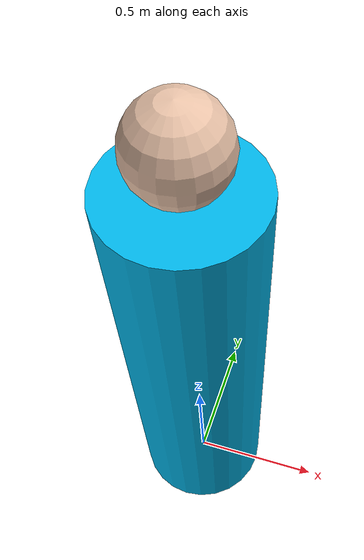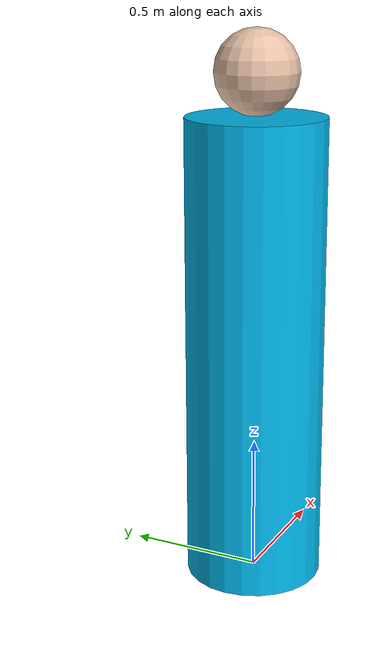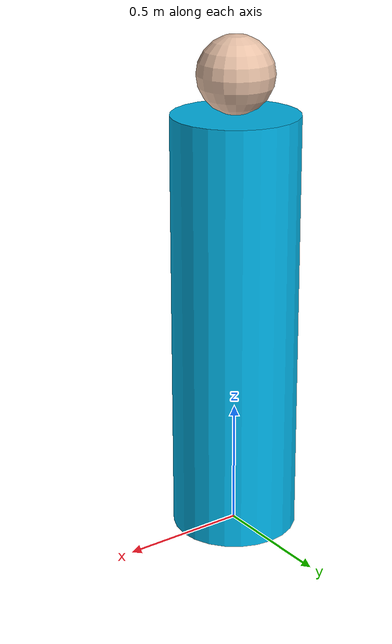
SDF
<?xml version="1.0" ?>
<sdf version="1.6">
  <model name="static_human">
    <static>true</static>
    <link name="link">
      <!-- Torso / Body -->
      <collision name="body_collision">
        <pose>0 0 0.85 0 0 0</pose>
        <geometry>
          <cylinder>
            <radius>0.25</radius>
            <length>1.7</length>
          </cylinder>
        </geometry>
      </collision>
      <visual name="body_visual">
        <pose>0 0 0.85 0 0 0</pose>
        <geometry>
          <cylinder>
            <radius>0.25</radius>
            <length>1.7</length>
          </cylinder>
        </geometry>
        <material>
          <ambient>0.0 0.6 0.8 1.0</ambient>
          <diffuse>0.0 0.7 0.9 1.0</diffuse>
        </material>
      </visual>

      <!-- Head -->
      <visual name="head_visual">
        <pose>0 0 1.85 0 0 0</pose>
        <geometry>
          <sphere>
            <radius>0.15</radius>
          </sphere>
        </geometry>
        <material>
          <ambient>0.9 0.75 0.65 1.0</ambient>
          <diffuse>0.9 0.75 0.65 1.0</diffuse>
        </material>
      </visual>
    </link>
  </model>
</sdf>
